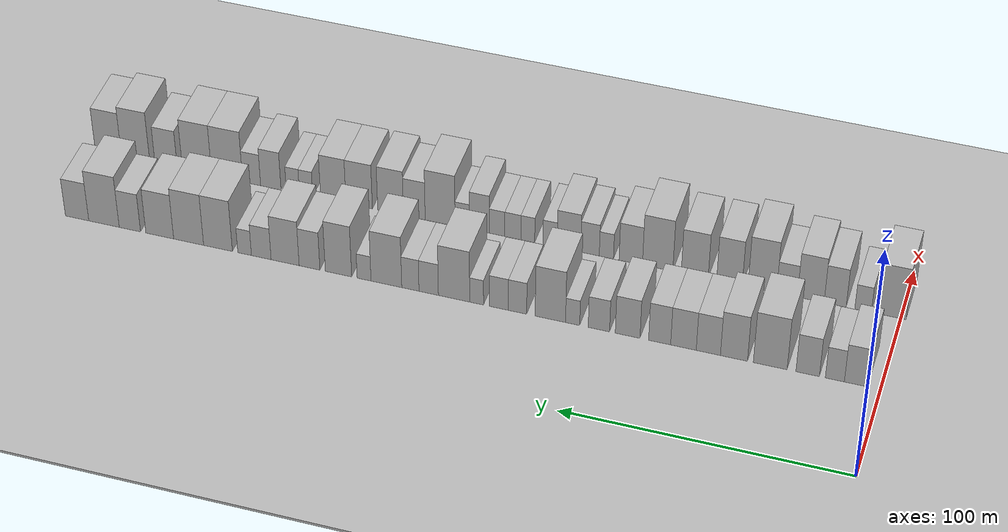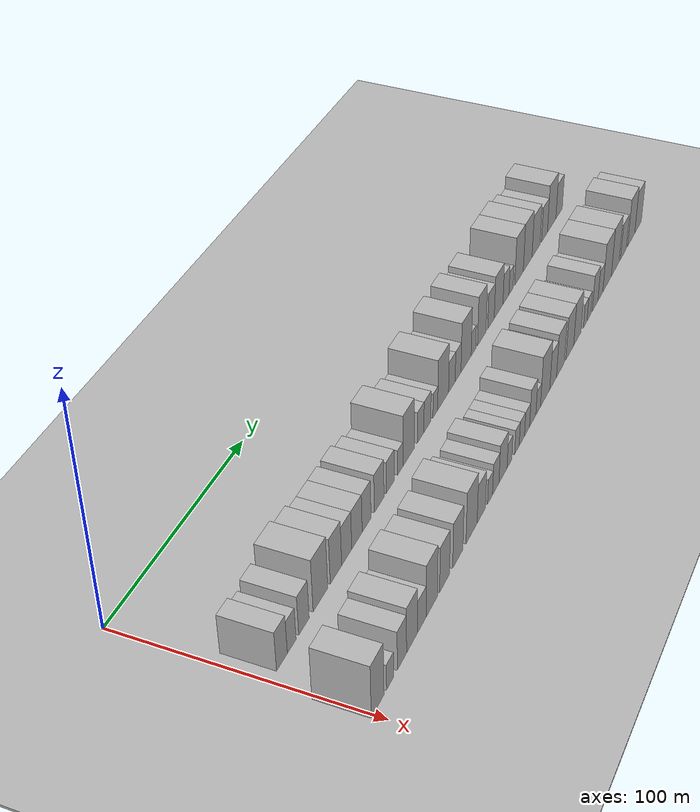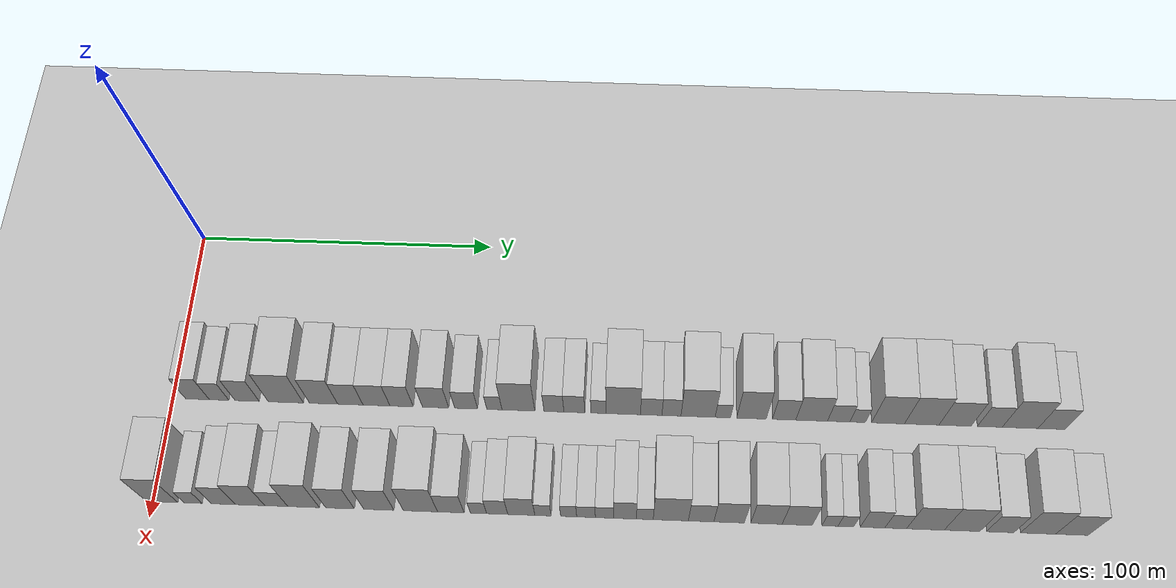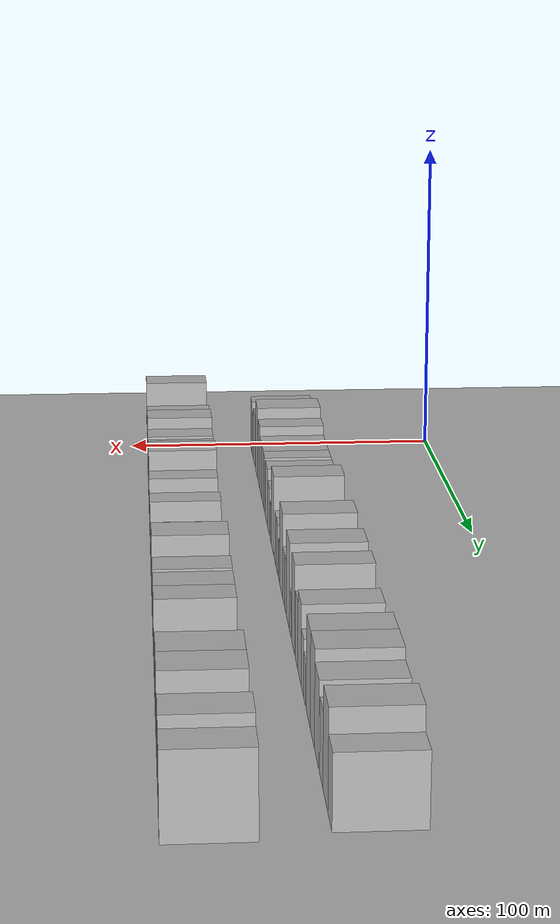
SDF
<sdf version="1.6">
 <world name="default">
  <include><name>ground_plane_1</name><uri>model://HANNAS_ground_plane</uri></include>
  <include>
   <name>ground_plane_2</name>
   <uri>model://HANNAS_ground_plane</uri>
   <pose>100 0 0  0 0 0</pose>
  </include>
  <model name="building_33">
   <static>1</static>
   <pose>50.0000 8.3077 0 0.000000 0.000000 0.000000</pose>
   <link name="link">
    <pose>0 0 9.00 0 0 0</pose>
    <collision name="collision"><geometry><box><size>20.0000 7.8744 18.0000</size></box></geometry></collision>
    <visual name="visual">
     <cast_shadows>0</cast_shadows>
     <geometry><box><size>20.0000 7.8744 18.0000</size></box></geometry>
     <material>
      <script>
       <uri>model://HANNAS_wall/materials/scripts</uri>
       <uri>model://HANNAS_wall/materials/textures</uri>
       <name>vrc/HANNAS_wall</name>
      </script>
     </material>
    </visual>
   </link>
  </model>
  <model name="building_34">
   <static>1</static>
   <pose>50.0000 15.4717 0 0.000000 0.000000 0.000000</pose>
   <link name="link">
    <pose>0 0 7.50 0 0 0</pose>
    <collision name="collision"><geometry><box><size>20.0000 6.4537 15.0000</size></box></geometry></collision>
    <visual name="visual">
     <cast_shadows>0</cast_shadows>
     <geometry><box><size>20.0000 6.4537 15.0000</size></box></geometry>
     <material>
      <script>
       <uri>model://HANNAS_wall/materials/scripts</uri>
       <uri>model://HANNAS_wall/materials/textures</uri>
       <name>vrc/HANNAS_wall</name>
      </script>
     </material>
    </visual>
   </link>
  </model>
  <model name="building_35">
   <static>1</static>
   <pose>50.0000 24.6957 0 0.000000 0.000000 0.000000</pose>
   <link name="link">
    <pose>0 0 9.00 0 0 0</pose>
    <collision name="collision"><geometry><box><size>20.0000 7.9942 18.0000</size></box></geometry></collision>
    <visual name="visual">
     <cast_shadows>0</cast_shadows>
     <geometry><box><size>20.0000 7.9942 18.0000</size></box></geometry>
     <material>
      <script>
       <uri>model://HANNAS_wall/materials/scripts</uri>
       <uri>model://HANNAS_wall/materials/textures</uri>
       <name>vrc/HANNAS_wall</name>
      </script>
     </material>
    </visual>
   </link>
  </model>
  <model name="building_36">
   <static>1</static>
   <pose>50.0000 37.4845 0 0.000000 0.000000 0.000000</pose>
   <link name="link">
    <pose>0 0 12.00 0 0 0</pose>
    <collision name="collision"><geometry><box><size>20.0000 11.5835 24.0000</size></box></geometry></collision>
    <visual name="visual">
     <cast_shadows>0</cast_shadows>
     <geometry><box><size>20.0000 11.5835 24.0000</size></box></geometry>
     <material>
      <script>
       <uri>model://HANNAS_wall/materials/scripts</uri>
       <uri>model://HANNAS_wall/materials/textures</uri>
       <name>vrc/HANNAS_wall</name>
      </script>
     </material>
    </visual>
   </link>
  </model>
  <model name="building_37">
   <static>1</static>
   <pose>50.0000 49.9310 0 0.000000 0.000000 0.000000</pose>
   <link name="link">
    <pose>0 0 10.50 0 0 0</pose>
    <collision name="collision"><geometry><box><size>20.0000 9.3095 21.0000</size></box></geometry></collision>
    <visual name="visual">
     <cast_shadows>0</cast_shadows>
     <geometry><box><size>20.0000 9.3095 21.0000</size></box></geometry>
     <material>
      <script>
       <uri>model://HANNAS_wall/materials/scripts</uri>
       <uri>model://HANNAS_wall/materials/textures</uri>
       <name>vrc/HANNAS_wall</name>
      </script>
     </material>
    </visual>
   </link>
  </model>
  <model name="building_38">
   <static>1</static>
   <pose>50.0000 58.7630 0 0.000000 0.000000 0.000000</pose>
   <link name="link">
    <pose>0 0 9.00 0 0 0</pose>
    <collision name="collision"><geometry><box><size>20.0000 8.3544 18.0000</size></box></geometry></collision>
    <visual name="visual">
     <cast_shadows>0</cast_shadows>
     <geometry><box><size>20.0000 8.3544 18.0000</size></box></geometry>
     <material>
      <script>
       <uri>model://HANNAS_wall/materials/scripts</uri>
       <uri>model://HANNAS_wall/materials/textures</uri>
       <name>vrc/HANNAS_wall</name>
      </script>
     </material>
    </visual>
   </link>
  </model>
  <model name="building_39">
   <static>1</static>
   <pose>50.0000 67.3760 0 0.000000 0.000000 0.000000</pose>
   <link name="link">
    <pose>0 0 9.00 0 0 0</pose>
    <collision name="collision"><geometry><box><size>20.0000 8.8717 18.0000</size></box></geometry></collision>
    <visual name="visual">
     <cast_shadows>0</cast_shadows>
     <geometry><box><size>20.0000 8.8717 18.0000</size></box></geometry>
     <material>
      <script>
       <uri>model://HANNAS_wall/materials/scripts</uri>
       <uri>model://HANNAS_wall/materials/textures</uri>
       <name>vrc/HANNAS_wall</name>
      </script>
     </material>
    </visual>
   </link>
  </model>
  <model name="building_40">
   <static>1</static>
   <pose>50.0000 75.6521 0 0.000000 0.000000 0.000000</pose>
   <link name="link">
    <pose>0 0 9.00 0 0 0</pose>
    <collision name="collision"><geometry><box><size>20.0000 7.6804 18.0000</size></box></geometry></collision>
    <visual name="visual">
     <cast_shadows>0</cast_shadows>
     <geometry><box><size>20.0000 7.6804 18.0000</size></box></geometry>
     <material>
      <script>
       <uri>model://HANNAS_wall/materials/scripts</uri>
       <uri>model://HANNAS_wall/materials/textures</uri>
       <name>vrc/HANNAS_wall</name>
      </script>
     </material>
    </visual>
   </link>
  </model>
  <model name="building_41">
   <static>1</static>
   <pose>50.0000 86.8144 0 0.000000 0.000000 0.000000</pose>
   <link name="link">
    <pose>0 0 9.00 0 0 0</pose>
    <collision name="collision"><geometry><box><size>20.0000 8.6443 18.0000</size></box></geometry></collision>
    <visual name="visual">
     <cast_shadows>0</cast_shadows>
     <geometry><box><size>20.0000 8.6443 18.0000</size></box></geometry>
     <material>
      <script>
       <uri>model://HANNAS_wall/materials/scripts</uri>
       <uri>model://HANNAS_wall/materials/textures</uri>
       <name>vrc/HANNAS_wall</name>
      </script>
     </material>
    </visual>
   </link>
  </model>
  <model name="building_42">
   <static>1</static>
   <pose>50.0000 96.8836 0 0.000000 0.000000 0.000000</pose>
   <link name="link">
    <pose>0 0 7.50 0 0 0</pose>
    <collision name="collision"><geometry><box><size>20.0000 7.4940 15.0000</size></box></geometry></collision>
    <visual name="visual">
     <cast_shadows>0</cast_shadows>
     <geometry><box><size>20.0000 7.4940 15.0000</size></box></geometry>
     <material>
      <script>
       <uri>model://HANNAS_wall/materials/scripts</uri>
       <uri>model://HANNAS_wall/materials/textures</uri>
       <name>vrc/HANNAS_wall</name>
      </script>
     </material>
    </visual>
   </link>
  </model>
  <model name="building_43">
   <static>1</static>
   <pose>50.0000 106.1288 0 0.000000 0.000000 0.000000</pose>
   <link name="link">
    <pose>0 0 6.00 0 0 0</pose>
    <collision name="collision"><geometry><box><size>20.0000 4.9965 12.0000</size></box></geometry></collision>
    <visual name="visual">
     <cast_shadows>0</cast_shadows>
     <geometry><box><size>20.0000 4.9965 12.0000</size></box></geometry>
     <material>
      <script>
       <uri>model://HANNAS_wall/materials/scripts</uri>
       <uri>model://HANNAS_wall/materials/textures</uri>
       <name>vrc/HANNAS_wall</name>
      </script>
     </material>
    </visual>
   </link>
  </model>
  <model name="building_44">
   <static>1</static>
   <pose>50.0000 114.0074 0 0.000000 0.000000 0.000000</pose>
   <link name="link">
    <pose>0 0 12.00 0 0 0</pose>
    <collision name="collision"><geometry><box><size>20.0000 10.7607 24.0000</size></box></geometry></collision>
    <visual name="visual">
     <cast_shadows>0</cast_shadows>
     <geometry><box><size>20.0000 10.7607 24.0000</size></box></geometry>
     <material>
      <script>
       <uri>model://HANNAS_wall/materials/scripts</uri>
       <uri>model://HANNAS_wall/materials/textures</uri>
       <name>vrc/HANNAS_wall</name>
      </script>
     </material>
    </visual>
   </link>
  </model>
  <model name="building_45">
   <static>1</static>
   <pose>50.0000 125.6424 0 0.000000 0.000000 0.000000</pose>
   <link name="link">
    <pose>0 0 7.50 0 0 0</pose>
    <collision name="collision"><geometry><box><size>20.0000 6.5093 15.0000</size></box></geometry></collision>
    <visual name="visual">
     <cast_shadows>0</cast_shadows>
     <geometry><box><size>20.0000 6.5093 15.0000</size></box></geometry>
     <material>
      <script>
       <uri>model://HANNAS_wall/materials/scripts</uri>
       <uri>model://HANNAS_wall/materials/textures</uri>
       <name>vrc/HANNAS_wall</name>
      </script>
     </material>
    </visual>
   </link>
  </model>
  <model name="building_46">
   <static>1</static>
   <pose>50.0000 132.3293 0 0.000000 0.000000 0.000000</pose>
   <link name="link">
    <pose>0 0 7.50 0 0 0</pose>
    <collision name="collision"><geometry><box><size>20.0000 6.8644 15.0000</size></box></geometry></collision>
    <visual name="visual">
     <cast_shadows>0</cast_shadows>
     <geometry><box><size>20.0000 6.8644 15.0000</size></box></geometry>
     <material>
      <script>
       <uri>model://HANNAS_wall/materials/scripts</uri>
       <uri>model://HANNAS_wall/materials/textures</uri>
       <name>vrc/HANNAS_wall</name>
      </script>
     </material>
    </visual>
   </link>
  </model>
  <model name="building_47">
   <static>1</static>
   <pose>50.0000 140.2455 0 0.000000 0.000000 0.000000</pose>
   <link name="link">
    <pose>0 0 6.00 0 0 0</pose>
    <collision name="collision"><geometry><box><size>20.0000 4.9681 12.0000</size></box></geometry></collision>
    <visual name="visual">
     <cast_shadows>0</cast_shadows>
     <geometry><box><size>20.0000 4.9681 12.0000</size></box></geometry>
     <material>
      <script>
       <uri>model://HANNAS_wall/materials/scripts</uri>
       <uri>model://HANNAS_wall/materials/textures</uri>
       <name>vrc/HANNAS_wall</name>
      </script>
     </material>
    </visual>
   </link>
  </model>
  <model name="building_48">
   <static>1</static>
   <pose>50.0000 148.3517 0 0.000000 0.000000 0.000000</pose>
   <link name="link">
    <pose>0 0 12.00 0 0 0</pose>
    <collision name="collision"><geometry><box><size>20.0000 11.2443 24.0000</size></box></geometry></collision>
    <visual name="visual">
     <cast_shadows>0</cast_shadows>
     <geometry><box><size>20.0000 11.2443 24.0000</size></box></geometry>
     <material>
      <script>
       <uri>model://HANNAS_wall/materials/scripts</uri>
       <uri>model://HANNAS_wall/materials/textures</uri>
       <name>vrc/HANNAS_wall</name>
      </script>
     </material>
    </visual>
   </link>
  </model>
  <model name="building_49">
   <static>1</static>
   <pose>50.0000 157.4741 0 0.000000 0.000000 0.000000</pose>
   <link name="link">
    <pose>0 0 7.50 0 0 0</pose>
    <collision name="collision"><geometry><box><size>20.0000 7.0004 15.0000</size></box></geometry></collision>
    <visual name="visual">
     <cast_shadows>0</cast_shadows>
     <geometry><box><size>20.0000 7.0004 15.0000</size></box></geometry>
     <material>
      <script>
       <uri>model://HANNAS_wall/materials/scripts</uri>
       <uri>model://HANNAS_wall/materials/textures</uri>
       <name>vrc/HANNAS_wall</name>
      </script>
     </material>
    </visual>
   </link>
  </model>
  <model name="building_50">
   <static>1</static>
   <pose>50.0000 164.0814 0 0.000000 0.000000 0.000000</pose>
   <link name="link">
    <pose>0 0 7.50 0 0 0</pose>
    <collision name="collision"><geometry><box><size>20.0000 6.2141 15.0000</size></box></geometry></collision>
    <visual name="visual">
     <cast_shadows>0</cast_shadows>
     <geometry><box><size>20.0000 6.2141 15.0000</size></box></geometry>
     <material>
      <script>
       <uri>model://HANNAS_wall/materials/scripts</uri>
       <uri>model://HANNAS_wall/materials/textures</uri>
       <name>vrc/HANNAS_wall</name>
      </script>
     </material>
    </visual>
   </link>
  </model>
  <model name="building_51">
   <static>1</static>
   <pose>50.0000 172.7719 0 0.000000 0.000000 0.000000</pose>
   <link name="link">
    <pose>0 0 12.00 0 0 0</pose>
    <collision name="collision"><geometry><box><size>20.0000 11.1669 24.0000</size></box></geometry></collision>
    <visual name="visual">
     <cast_shadows>0</cast_shadows>
     <geometry><box><size>20.0000 11.1669 24.0000</size></box></geometry>
     <material>
      <script>
       <uri>model://HANNAS_wall/materials/scripts</uri>
       <uri>model://HANNAS_wall/materials/textures</uri>
       <name>vrc/HANNAS_wall</name>
      </script>
     </material>
    </visual>
   </link>
  </model>
  <model name="building_52">
   <static>1</static>
   <pose>50.0000 180.8768 0 0.000000 0.000000 0.000000</pose>
   <link name="link">
    <pose>0 0 6.00 0 0 0</pose>
    <collision name="collision"><geometry><box><size>20.0000 5.0429 12.0000</size></box></geometry></collision>
    <visual name="visual">
     <cast_shadows>0</cast_shadows>
     <geometry><box><size>20.0000 5.0429 12.0000</size></box></geometry>
     <material>
      <script>
       <uri>model://HANNAS_wall/materials/scripts</uri>
       <uri>model://HANNAS_wall/materials/textures</uri>
       <name>vrc/HANNAS_wall</name>
      </script>
     </material>
    </visual>
   </link>
  </model>
  <model name="building_53">
   <static>1</static>
   <pose>50.0000 190.2088 0 0.000000 0.000000 0.000000</pose>
   <link name="link">
    <pose>0 0 12.00 0 0 0</pose>
    <collision name="collision"><geometry><box><size>20.0000 9.6211 24.0000</size></box></geometry></collision>
    <visual name="visual">
     <cast_shadows>0</cast_shadows>
     <geometry><box><size>20.0000 9.6211 24.0000</size></box></geometry>
     <material>
      <script>
       <uri>model://HANNAS_wall/materials/scripts</uri>
       <uri>model://HANNAS_wall/materials/textures</uri>
       <name>vrc/HANNAS_wall</name>
      </script>
     </material>
    </visual>
   </link>
  </model>
  <model name="building_54">
   <static>1</static>
   <pose>50.0000 200.8374 0 0.000000 0.000000 0.000000</pose>
   <link name="link">
    <pose>0 0 9.00 0 0 0</pose>
    <collision name="collision"><geometry><box><size>20.0000 7.6361 18.0000</size></box></geometry></collision>
    <visual name="visual">
     <cast_shadows>0</cast_shadows>
     <geometry><box><size>20.0000 7.6361 18.0000</size></box></geometry>
     <material>
      <script>
       <uri>model://HANNAS_wall/materials/scripts</uri>
       <uri>model://HANNAS_wall/materials/textures</uri>
       <name>vrc/HANNAS_wall</name>
      </script>
     </material>
    </visual>
   </link>
  </model>
  <model name="building_55">
   <static>1</static>
   <pose>50.0000 209.8259 0 0.000000 0.000000 0.000000</pose>
   <link name="link">
    <pose>0 0 10.50 0 0 0</pose>
    <collision name="collision"><geometry><box><size>20.0000 10.3408 21.0000</size></box></geometry></collision>
    <visual name="visual">
     <cast_shadows>0</cast_shadows>
     <geometry><box><size>20.0000 10.3408 21.0000</size></box></geometry>
     <material>
      <script>
       <uri>model://HANNAS_wall/materials/scripts</uri>
       <uri>model://HANNAS_wall/materials/textures</uri>
       <name>vrc/HANNAS_wall</name>
      </script>
     </material>
    </visual>
   </link>
  </model>
  <model name="building_56">
   <static>1</static>
   <pose>50.0000 218.6355 0 0.000000 0.000000 0.000000</pose>
   <link name="link">
    <pose>0 0 7.50 0 0 0</pose>
    <collision name="collision"><geometry><box><size>20.0000 7.2785 15.0000</size></box></geometry></collision>
    <visual name="visual">
     <cast_shadows>0</cast_shadows>
     <geometry><box><size>20.0000 7.2785 15.0000</size></box></geometry>
     <material>
      <script>
       <uri>model://HANNAS_wall/materials/scripts</uri>
       <uri>model://HANNAS_wall/materials/textures</uri>
       <name>vrc/HANNAS_wall</name>
      </script>
     </material>
    </visual>
   </link>
  </model>
  <model name="building_57">
   <static>1</static>
   <pose>50.0000 224.8063 0 0.000000 0.000000 0.000000</pose>
   <link name="link">
    <pose>0 0 6.00 0 0 0</pose>
    <collision name="collision"><geometry><box><size>20.0000 5.0629 12.0000</size></box></geometry></collision>
    <visual name="visual">
     <cast_shadows>0</cast_shadows>
     <geometry><box><size>20.0000 5.0629 12.0000</size></box></geometry>
     <material>
      <script>
       <uri>model://HANNAS_wall/materials/scripts</uri>
       <uri>model://HANNAS_wall/materials/textures</uri>
       <name>vrc/HANNAS_wall</name>
      </script>
     </material>
    </visual>
   </link>
  </model>
  <model name="building_58">
   <static>1</static>
   <pose>50.0000 234.7085 0 0.000000 0.000000 0.000000</pose>
   <link name="link">
    <pose>0 0 12.00 0 0 0</pose>
    <collision name="collision"><geometry><box><size>20.0000 10.7415 24.0000</size></box></geometry></collision>
    <visual name="visual">
     <cast_shadows>0</cast_shadows>
     <geometry><box><size>20.0000 10.7415 24.0000</size></box></geometry>
     <material>
      <script>
       <uri>model://HANNAS_wall/materials/scripts</uri>
       <uri>model://HANNAS_wall/materials/textures</uri>
       <name>vrc/HANNAS_wall</name>
      </script>
     </material>
    </visual>
   </link>
  </model>
  <model name="building_59">
   <static>1</static>
   <pose>50.0000 245.6896 0 0.000000 0.000000 0.000000</pose>
   <link name="link">
    <pose>0 0 12.00 0 0 0</pose>
    <collision name="collision"><geometry><box><size>20.0000 11.2207 24.0000</size></box></geometry></collision>
    <visual name="visual">
     <cast_shadows>0</cast_shadows>
     <geometry><box><size>20.0000 11.2207 24.0000</size></box></geometry>
     <material>
      <script>
       <uri>model://HANNAS_wall/materials/scripts</uri>
       <uri>model://HANNAS_wall/materials/textures</uri>
       <name>vrc/HANNAS_wall</name>
      </script>
     </material>
    </visual>
   </link>
  </model>
  <model name="building_60">
   <static>1</static>
   <pose>50.0000 256.5282 0 0.000000 0.000000 0.000000</pose>
   <link name="link">
    <pose>0 0 10.50 0 0 0</pose>
    <collision name="collision"><geometry><box><size>20.0000 10.4566 21.0000</size></box></geometry></collision>
    <visual name="visual">
     <cast_shadows>0</cast_shadows>
     <geometry><box><size>20.0000 10.4566 21.0000</size></box></geometry>
     <material>
      <script>
       <uri>model://HANNAS_wall/materials/scripts</uri>
       <uri>model://HANNAS_wall/materials/textures</uri>
       <name>vrc/HANNAS_wall</name>
      </script>
     </material>
    </visual>
   </link>
  </model>
  <model name="building_61">
   <static>1</static>
   <pose>50.0000 267.7824 0 0.000000 0.000000 0.000000</pose>
   <link name="link">
    <pose>0 0 9.00 0 0 0</pose>
    <collision name="collision"><geometry><box><size>20.0000 8.0516 18.0000</size></box></geometry></collision>
    <visual name="visual">
     <cast_shadows>0</cast_shadows>
     <geometry><box><size>20.0000 8.0516 18.0000</size></box></geometry>
     <material>
      <script>
       <uri>model://HANNAS_wall/materials/scripts</uri>
       <uri>model://HANNAS_wall/materials/textures</uri>
       <name>vrc/HANNAS_wall</name>
      </script>
     </material>
    </visual>
   </link>
  </model>
  <model name="building_62">
   <static>1</static>
   <pose>50.0000 277.5913 0 0.000000 0.000000 0.000000</pose>
   <link name="link">
    <pose>0 0 12.00 0 0 0</pose>
    <collision name="collision"><geometry><box><size>20.0000 11.5663 24.0000</size></box></geometry></collision>
    <visual name="visual">
     <cast_shadows>0</cast_shadows>
     <geometry><box><size>20.0000 11.5663 24.0000</size></box></geometry>
     <material>
      <script>
       <uri>model://HANNAS_wall/materials/scripts</uri>
       <uri>model://HANNAS_wall/materials/textures</uri>
       <name>vrc/HANNAS_wall</name>
      </script>
     </material>
    </visual>
   </link>
  </model>
  <model name="building_63">
   <static>1</static>
   <pose>50.0000 287.8205 0 0.000000 0.000000 0.000000</pose>
   <link name="link">
    <pose>0 0 9.00 0 0 0</pose>
    <collision name="collision"><geometry><box><size>20.0000 8.8919 18.0000</size></box></geometry></collision>
    <visual name="visual">
     <cast_shadows>0</cast_shadows>
     <geometry><box><size>20.0000 8.8919 18.0000</size></box></geometry>
     <material>
      <script>
       <uri>model://HANNAS_wall/materials/scripts</uri>
       <uri>model://HANNAS_wall/materials/textures</uri>
       <name>vrc/HANNAS_wall</name>
      </script>
     </material>
    </visual>
   </link>
  </model>
  <model name="building_97">
   <static>1</static>
   <pose>85.0000 3.2136 0 0.000000 0.000000 0.000000</pose>
   <link name="link">
    <pose>0 0 12.00 0 0 0</pose>
    <collision name="collision"><geometry><box><size>20.0000 9.9870 24.0000</size></box></geometry></collision>
    <visual name="visual">
     <cast_shadows>0</cast_shadows>
     <geometry><box><size>20.0000 9.9870 24.0000</size></box></geometry>
     <material>
      <script>
       <uri>model://HANNAS_wall/materials/scripts</uri>
       <uri>model://HANNAS_wall/materials/textures</uri>
       <name>vrc/HANNAS_wall</name>
      </script>
     </material>
    </visual>
   </link>
  </model>
  <model name="building_98">
   <static>1</static>
   <pose>85.0000 13.0778 0 0.000000 0.000000 0.000000</pose>
   <link name="link">
    <pose>0 0 6.00 0 0 0</pose>
    <collision name="collision"><geometry><box><size>20.0000 5.7414 12.0000</size></box></geometry></collision>
    <visual name="visual">
     <cast_shadows>0</cast_shadows>
     <geometry><box><size>20.0000 5.7414 12.0000</size></box></geometry>
     <material>
      <script>
       <uri>model://HANNAS_wall/materials/scripts</uri>
       <uri>model://HANNAS_wall/materials/textures</uri>
       <name>vrc/HANNAS_wall</name>
      </script>
     </material>
    </visual>
   </link>
  </model>
  <model name="building_99">
   <static>1</static>
   <pose>85.0000 22.7902 0 0.000000 0.000000 0.000000</pose>
   <link name="link">
    <pose>0 0 9.00 0 0 0</pose>
    <collision name="collision"><geometry><box><size>20.0000 7.6833 18.0000</size></box></geometry></collision>
    <visual name="visual">
     <cast_shadows>0</cast_shadows>
     <geometry><box><size>20.0000 7.6833 18.0000</size></box></geometry>
     <material>
      <script>
       <uri>model://HANNAS_wall/materials/scripts</uri>
       <uri>model://HANNAS_wall/materials/textures</uri>
       <name>vrc/HANNAS_wall</name>
      </script>
     </material>
    </visual>
   </link>
  </model>
  <model name="building_100">
   <static>1</static>
   <pose>85.0000 31.2977 0 0.000000 0.000000 0.000000</pose>
   <link name="link">
    <pose>0 0 10.50 0 0 0</pose>
    <collision name="collision"><geometry><box><size>20.0000 9.3317 21.0000</size></box></geometry></collision>
    <visual name="visual">
     <cast_shadows>0</cast_shadows>
     <geometry><box><size>20.0000 9.3317 21.0000</size></box></geometry>
     <material>
      <script>
       <uri>model://HANNAS_wall/materials/scripts</uri>
       <uri>model://HANNAS_wall/materials/textures</uri>
       <name>vrc/HANNAS_wall</name>
      </script>
     </material>
    </visual>
   </link>
  </model>
  <model name="building_101">
   <static>1</static>
   <pose>85.0000 39.6190 0 0.000000 0.000000 0.000000</pose>
   <link name="link">
    <pose>0 0 7.50 0 0 0</pose>
    <collision name="collision"><geometry><box><size>20.0000 7.3111 15.0000</size></box></geometry></collision>
    <visual name="visual">
     <cast_shadows>0</cast_shadows>
     <geometry><box><size>20.0000 7.3111 15.0000</size></box></geometry>
     <material>
      <script>
       <uri>model://HANNAS_wall/materials/scripts</uri>
       <uri>model://HANNAS_wall/materials/textures</uri>
       <name>vrc/HANNAS_wall</name>
      </script>
     </material>
    </visual>
   </link>
  </model>
  <model name="building_102">
   <static>1</static>
   <pose>85.0000 48.3078 0 0.000000 0.000000 0.000000</pose>
   <link name="link">
    <pose>0 0 12.00 0 0 0</pose>
    <collision name="collision"><geometry><box><size>20.0000 10.0664 24.0000</size></box></geometry></collision>
    <visual name="visual">
     <cast_shadows>0</cast_shadows>
     <geometry><box><size>20.0000 10.0664 24.0000</size></box></geometry>
     <material>
      <script>
       <uri>model://HANNAS_wall/materials/scripts</uri>
       <uri>model://HANNAS_wall/materials/textures</uri>
       <name>vrc/HANNAS_wall</name>
      </script>
     </material>
    </visual>
   </link>
  </model>
  <model name="building_103">
   <static>1</static>
   <pose>85.0000 59.8753 0 0.000000 0.000000 0.000000</pose>
   <link name="link">
    <pose>0 0 10.50 0 0 0</pose>
    <collision name="collision"><geometry><box><size>20.0000 9.0687 21.0000</size></box></geometry></collision>
    <visual name="visual">
     <cast_shadows>0</cast_shadows>
     <geometry><box><size>20.0000 9.0687 21.0000</size></box></geometry>
     <material>
      <script>
       <uri>model://HANNAS_wall/materials/scripts</uri>
       <uri>model://HANNAS_wall/materials/textures</uri>
       <name>vrc/HANNAS_wall</name>
      </script>
     </material>
    </visual>
   </link>
  </model>
  <model name="building_104">
   <static>1</static>
   <pose>85.0000 72.1993 0 0.000000 0.000000 0.000000</pose>
   <link name="link">
    <pose>0 0 10.50 0 0 0</pose>
    <collision name="collision"><geometry><box><size>20.0000 9.5793 21.0000</size></box></geometry></collision>
    <visual name="visual">
     <cast_shadows>0</cast_shadows>
     <geometry><box><size>20.0000 9.5793 21.0000</size></box></geometry>
     <material>
      <script>
       <uri>model://HANNAS_wall/materials/scripts</uri>
       <uri>model://HANNAS_wall/materials/textures</uri>
       <name>vrc/HANNAS_wall</name>
      </script>
     </material>
    </visual>
   </link>
  </model>
  <model name="building_105">
   <static>1</static>
   <pose>85.0000 85.4205 0 0.000000 0.000000 0.000000</pose>
   <link name="link">
    <pose>0 0 12.00 0 0 0</pose>
    <collision name="collision"><geometry><box><size>20.0000 10.8630 24.0000</size></box></geometry></collision>
    <visual name="visual">
     <cast_shadows>0</cast_shadows>
     <geometry><box><size>20.0000 10.8630 24.0000</size></box></geometry>
     <material>
      <script>
       <uri>model://HANNAS_wall/materials/scripts</uri>
       <uri>model://HANNAS_wall/materials/textures</uri>
       <name>vrc/HANNAS_wall</name>
      </script>
     </material>
    </visual>
   </link>
  </model>
  <model name="building_106">
   <static>1</static>
   <pose>85.0000 95.0516 0 0.000000 0.000000 0.000000</pose>
   <link name="link">
    <pose>0 0 9.00 0 0 0</pose>
    <collision name="collision"><geometry><box><size>20.0000 8.3993 18.0000</size></box></geometry></collision>
    <visual name="visual">
     <cast_shadows>0</cast_shadows>
     <geometry><box><size>20.0000 8.3993 18.0000</size></box></geometry>
     <material>
      <script>
       <uri>model://HANNAS_wall/materials/scripts</uri>
       <uri>model://HANNAS_wall/materials/textures</uri>
       <name>vrc/HANNAS_wall</name>
      </script>
     </material>
    </visual>
   </link>
  </model>
  <model name="building_107">
   <static>1</static>
   <pose>85.0000 103.8183 0 0.000000 0.000000 0.000000</pose>
   <link name="link">
    <pose>0 0 6.00 0 0 0</pose>
    <collision name="collision"><geometry><box><size>20.0000 5.1341 12.0000</size></box></geometry></collision>
    <visual name="visual">
     <cast_shadows>0</cast_shadows>
     <geometry><box><size>20.0000 5.1341 12.0000</size></box></geometry>
     <material>
      <script>
       <uri>model://HANNAS_wall/materials/scripts</uri>
       <uri>model://HANNAS_wall/materials/textures</uri>
       <name>vrc/HANNAS_wall</name>
      </script>
     </material>
    </visual>
   </link>
  </model>
  <model name="building_108">
   <static>1</static>
   <pose>85.0000 109.7317 0 0.000000 0.000000 0.000000</pose>
   <link name="link">
    <pose>0 0 7.50 0 0 0</pose>
    <collision name="collision"><geometry><box><size>20.0000 6.6927 15.0000</size></box></geometry></collision>
    <visual name="visual">
     <cast_shadows>0</cast_shadows>
     <geometry><box><size>20.0000 6.6927 15.0000</size></box></geometry>
     <material>
      <script>
       <uri>model://HANNAS_wall/materials/scripts</uri>
       <uri>model://HANNAS_wall/materials/textures</uri>
       <name>vrc/HANNAS_wall</name>
      </script>
     </material>
    </visual>
   </link>
  </model>
  <model name="building_109">
   <static>1</static>
   <pose>85.0000 117.3625 0 0.000000 0.000000 0.000000</pose>
   <link name="link">
    <pose>0 0 9.00 0 0 0</pose>
    <collision name="collision"><geometry><box><size>20.0000 8.5689 18.0000</size></box></geometry></collision>
    <visual name="visual">
     <cast_shadows>0</cast_shadows>
     <geometry><box><size>20.0000 8.5689 18.0000</size></box></geometry>
     <material>
      <script>
       <uri>model://HANNAS_wall/materials/scripts</uri>
       <uri>model://HANNAS_wall/materials/textures</uri>
       <name>vrc/HANNAS_wall</name>
      </script>
     </material>
    </visual>
   </link>
  </model>
  <model name="building_110">
   <static>1</static>
   <pose>85.0000 124.2242 0 0.000000 0.000000 0.000000</pose>
   <link name="link">
    <pose>0 0 6.00 0 0 0</pose>
    <collision name="collision"><geometry><box><size>20.0000 5.1545 12.0000</size></box></geometry></collision>
    <visual name="visual">
     <cast_shadows>0</cast_shadows>
     <geometry><box><size>20.0000 5.1545 12.0000</size></box></geometry>
     <material>
      <script>
       <uri>model://HANNAS_wall/materials/scripts</uri>
       <uri>model://HANNAS_wall/materials/textures</uri>
       <name>vrc/HANNAS_wall</name>
      </script>
     </material>
    </visual>
   </link>
  </model>
  <model name="building_111">
   <static>1</static>
   <pose>85.0000 132.3261 0 0.000000 0.000000 0.000000</pose>
   <link name="link">
    <pose>0 0 6.00 0 0 0</pose>
    <collision name="collision"><geometry><box><size>20.0000 5.0495 12.0000</size></box></geometry></collision>
    <visual name="visual">
     <cast_shadows>0</cast_shadows>
     <geometry><box><size>20.0000 5.0495 12.0000</size></box></geometry>
     <material>
      <script>
       <uri>model://HANNAS_wall/materials/scripts</uri>
       <uri>model://HANNAS_wall/materials/textures</uri>
       <name>vrc/HANNAS_wall</name>
      </script>
     </material>
    </visual>
   </link>
  </model>
  <model name="building_112">
   <static>1</static>
   <pose>85.0000 137.7935 0 0.000000 0.000000 0.000000</pose>
   <link name="link">
    <pose>0 0 6.00 0 0 0</pose>
    <collision name="collision"><geometry><box><size>20.0000 5.8854 12.0000</size></box></geometry></collision>
    <visual name="visual">
     <cast_shadows>0</cast_shadows>
     <geometry><box><size>20.0000 5.8854 12.0000</size></box></geometry>
     <material>
      <script>
       <uri>model://HANNAS_wall/materials/scripts</uri>
       <uri>model://HANNAS_wall/materials/textures</uri>
       <name>vrc/HANNAS_wall</name>
      </script>
     </material>
    </visual>
   </link>
  </model>
  <model name="building_113">
   <static>1</static>
   <pose>85.0000 143.5969 0 0.000000 0.000000 0.000000</pose>
   <link name="link">
    <pose>0 0 6.00 0 0 0</pose>
    <collision name="collision"><geometry><box><size>20.0000 5.7214 12.0000</size></box></geometry></collision>
    <visual name="visual">
     <cast_shadows>0</cast_shadows>
     <geometry><box><size>20.0000 5.7214 12.0000</size></box></geometry>
     <material>
      <script>
       <uri>model://HANNAS_wall/materials/scripts</uri>
       <uri>model://HANNAS_wall/materials/textures</uri>
       <name>vrc/HANNAS_wall</name>
      </script>
     </material>
    </visual>
   </link>
  </model>
  <model name="building_114">
   <static>1</static>
   <pose>85.0000 150.0671 0 0.000000 0.000000 0.000000</pose>
   <link name="link">
    <pose>0 0 9.00 0 0 0</pose>
    <collision name="collision"><geometry><box><size>20.0000 7.2189 18.0000</size></box></geometry></collision>
    <visual name="visual">
     <cast_shadows>0</cast_shadows>
     <geometry><box><size>20.0000 7.2189 18.0000</size></box></geometry>
     <material>
      <script>
       <uri>model://HANNAS_wall/materials/scripts</uri>
       <uri>model://HANNAS_wall/materials/textures</uri>
       <name>vrc/HANNAS_wall</name>
      </script>
     </material>
    </visual>
   </link>
  </model>
  <model name="building_115">
   <static>1</static>
   <pose>85.0000 156.3297 0 0.000000 0.000000 0.000000</pose>
   <link name="link">
    <pose>0 0 6.00 0 0 0</pose>
    <collision name="collision"><geometry><box><size>20.0000 5.3063 12.0000</size></box></geometry></collision>
    <visual name="visual">
     <cast_shadows>0</cast_shadows>
     <geometry><box><size>20.0000 5.3063 12.0000</size></box></geometry>
     <material>
      <script>
       <uri>model://HANNAS_wall/materials/scripts</uri>
       <uri>model://HANNAS_wall/materials/textures</uri>
       <name>vrc/HANNAS_wall</name>
      </script>
     </material>
    </visual>
   </link>
  </model>
  <model name="building_116">
   <static>1</static>
   <pose>85.0000 164.5100 0 0.000000 0.000000 0.000000</pose>
   <link name="link">
    <pose>0 0 12.00 0 0 0</pose>
    <collision name="collision"><geometry><box><size>20.0000 11.0542 24.0000</size></box></geometry></collision>
    <visual name="visual">
     <cast_shadows>0</cast_shadows>
     <geometry><box><size>20.0000 11.0542 24.0000</size></box></geometry>
     <material>
      <script>
       <uri>model://HANNAS_wall/materials/scripts</uri>
       <uri>model://HANNAS_wall/materials/textures</uri>
       <name>vrc/HANNAS_wall</name>
      </script>
     </material>
    </visual>
   </link>
  </model>
  <model name="building_117">
   <static>1</static>
   <pose>85.0000 174.0666 0 0.000000 0.000000 0.000000</pose>
   <link name="link">
    <pose>0 0 9.00 0 0 0</pose>
    <collision name="collision"><geometry><box><size>20.0000 8.0591 18.0000</size></box></geometry></collision>
    <visual name="visual">
     <cast_shadows>0</cast_shadows>
     <geometry><box><size>20.0000 8.0591 18.0000</size></box></geometry>
     <material>
      <script>
       <uri>model://HANNAS_wall/materials/scripts</uri>
       <uri>model://HANNAS_wall/materials/textures</uri>
       <name>vrc/HANNAS_wall</name>
      </script>
     </material>
    </visual>
   </link>
  </model>
  <model name="building_118">
   <static>1</static>
   <pose>85.0000 182.8969 0 0.000000 0.000000 0.000000</pose>
   <link name="link">
    <pose>0 0 10.50 0 0 0</pose>
    <collision name="collision"><geometry><box><size>20.0000 9.6016 21.0000</size></box></geometry></collision>
    <visual name="visual">
     <cast_shadows>0</cast_shadows>
     <geometry><box><size>20.0000 9.6016 21.0000</size></box></geometry>
     <material>
      <script>
       <uri>model://HANNAS_wall/materials/scripts</uri>
       <uri>model://HANNAS_wall/materials/textures</uri>
       <name>vrc/HANNAS_wall</name>
      </script>
     </material>
    </visual>
   </link>
  </model>
  <model name="building_119">
   <static>1</static>
   <pose>85.0000 194.6389 0 0.000000 0.000000 0.000000</pose>
   <link name="link">
    <pose>0 0 10.50 0 0 0</pose>
    <collision name="collision"><geometry><box><size>20.0000 9.8824 21.0000</size></box></geometry></collision>
    <visual name="visual">
     <cast_shadows>0</cast_shadows>
     <geometry><box><size>20.0000 9.8824 21.0000</size></box></geometry>
     <material>
      <script>
       <uri>model://HANNAS_wall/materials/scripts</uri>
       <uri>model://HANNAS_wall/materials/textures</uri>
       <name>vrc/HANNAS_wall</name>
      </script>
     </material>
    </visual>
   </link>
  </model>
  <model name="building_120">
   <static>1</static>
   <pose>85.0000 204.3396 0 0.000000 0.000000 0.000000</pose>
   <link name="link">
    <pose>0 0 10.50 0 0 0</pose>
    <collision name="collision"><geometry><box><size>20.0000 9.5189 21.0000</size></box></geometry></collision>
    <visual name="visual">
     <cast_shadows>0</cast_shadows>
     <geometry><box><size>20.0000 9.5189 21.0000</size></box></geometry>
     <material>
      <script>
       <uri>model://HANNAS_wall/materials/scripts</uri>
       <uri>model://HANNAS_wall/materials/textures</uri>
       <name>vrc/HANNAS_wall</name>
      </script>
     </material>
    </visual>
   </link>
  </model>
  <model name="building_121">
   <static>1</static>
   <pose>85.0000 214.6201 0 0.000000 0.000000 0.000000</pose>
   <link name="link">
    <pose>0 0 6.00 0 0 0</pose>
    <collision name="collision"><geometry><box><size>20.0000 5.0421 12.0000</size></box></geometry></collision>
    <visual name="visual">
     <cast_shadows>0</cast_shadows>
     <geometry><box><size>20.0000 5.0421 12.0000</size></box></geometry>
     <material>
      <script>
       <uri>model://HANNAS_wall/materials/scripts</uri>
       <uri>model://HANNAS_wall/materials/textures</uri>
       <name>vrc/HANNAS_wall</name>
      </script>
     </material>
    </visual>
   </link>
  </model>
  <model name="building_122">
   <static>1</static>
   <pose>85.0000 219.6144 0 0.000000 0.000000 0.000000</pose>
   <link name="link">
    <pose>0 0 6.00 0 0 0</pose>
    <collision name="collision"><geometry><box><size>20.0000 4.9465 12.0000</size></box></geometry></collision>
    <visual name="visual">
     <cast_shadows>0</cast_shadows>
     <geometry><box><size>20.0000 4.9465 12.0000</size></box></geometry>
     <material>
      <script>
       <uri>model://HANNAS_wall/materials/scripts</uri>
       <uri>model://HANNAS_wall/materials/textures</uri>
       <name>vrc/HANNAS_wall</name>
      </script>
     </material>
    </visual>
   </link>
  </model>
  <model name="building_123">
   <static>1</static>
   <pose>85.0000 227.9524 0 0.000000 0.000000 0.000000</pose>
   <link name="link">
    <pose>0 0 9.00 0 0 0</pose>
    <collision name="collision"><geometry><box><size>20.0000 7.7295 18.0000</size></box></geometry></collision>
    <visual name="visual">
     <cast_shadows>0</cast_shadows>
     <geometry><box><size>20.0000 7.7295 18.0000</size></box></geometry>
     <material>
      <script>
       <uri>model://HANNAS_wall/materials/scripts</uri>
       <uri>model://HANNAS_wall/materials/textures</uri>
       <name>vrc/HANNAS_wall</name>
      </script>
     </material>
    </visual>
   </link>
  </model>
  <model name="building_124">
   <static>1</static>
   <pose>85.0000 235.2261 0 0.000000 0.000000 0.000000</pose>
   <link name="link">
    <pose>0 0 7.50 0 0 0</pose>
    <collision name="collision"><geometry><box><size>20.0000 6.8179 15.0000</size></box></geometry></collision>
    <visual name="visual">
     <cast_shadows>0</cast_shadows>
     <geometry><box><size>20.0000 6.8179 15.0000</size></box></geometry>
     <material>
      <script>
       <uri>model://HANNAS_wall/materials/scripts</uri>
       <uri>model://HANNAS_wall/materials/textures</uri>
       <name>vrc/HANNAS_wall</name>
      </script>
     </material>
    </visual>
   </link>
  </model>
  <model name="building_125">
   <static>1</static>
   <pose>85.0000 244.5659 0 0.000000 0.000000 0.000000</pose>
   <link name="link">
    <pose>0 0 12.00 0 0 0</pose>
    <collision name="collision"><geometry><box><size>20.0000 11.8618 24.0000</size></box></geometry></collision>
    <visual name="visual">
     <cast_shadows>0</cast_shadows>
     <geometry><box><size>20.0000 11.8618 24.0000</size></box></geometry>
     <material>
      <script>
       <uri>model://HANNAS_wall/materials/scripts</uri>
       <uri>model://HANNAS_wall/materials/textures</uri>
       <name>vrc/HANNAS_wall</name>
      </script>
     </material>
    </visual>
   </link>
  </model>
  <model name="building_126">
   <static>1</static>
   <pose>85.0000 256.1086 0 0.000000 0.000000 0.000000</pose>
   <link name="link">
    <pose>0 0 12.00 0 0 0</pose>
    <collision name="collision"><geometry><box><size>20.0000 11.2236 24.0000</size></box></geometry></collision>
    <visual name="visual">
     <cast_shadows>0</cast_shadows>
     <geometry><box><size>20.0000 11.2236 24.0000</size></box></geometry>
     <material>
      <script>
       <uri>model://HANNAS_wall/materials/scripts</uri>
       <uri>model://HANNAS_wall/materials/textures</uri>
       <name>vrc/HANNAS_wall</name>
      </script>
     </material>
    </visual>
   </link>
  </model>
  <model name="building_127">
   <static>1</static>
   <pose>85.0000 268.0243 0 0.000000 0.000000 0.000000</pose>
   <link name="link">
    <pose>0 0 9.00 0 0 0</pose>
    <collision name="collision"><geometry><box><size>20.0000 8.6079 18.0000</size></box></geometry></collision>
    <visual name="visual">
     <cast_shadows>0</cast_shadows>
     <geometry><box><size>20.0000 8.6079 18.0000</size></box></geometry>
     <material>
      <script>
       <uri>model://HANNAS_wall/materials/scripts</uri>
       <uri>model://HANNAS_wall/materials/textures</uri>
       <name>vrc/HANNAS_wall</name>
      </script>
     </material>
    </visual>
   </link>
  </model>
  <model name="building_128">
   <static>1</static>
   <pose>85.0000 279.8173 0 0.000000 0.000000 0.000000</pose>
   <link name="link">
    <pose>0 0 12.00 0 0 0</pose>
    <collision name="collision"><geometry><box><size>20.0000 10.9780 24.0000</size></box></geometry></collision>
    <visual name="visual">
     <cast_shadows>0</cast_shadows>
     <geometry><box><size>20.0000 10.9780 24.0000</size></box></geometry>
     <material>
      <script>
       <uri>model://HANNAS_wall/materials/scripts</uri>
       <uri>model://HANNAS_wall/materials/textures</uri>
       <name>vrc/HANNAS_wall</name>
      </script>
     </material>
    </visual>
   </link>
  </model>
  <model name="building_129">
   <static>1</static>
   <pose>85.0000 290.3953 0 0.000000 0.000000 0.000000</pose>
   <link name="link">
    <pose>0 0 10.50 0 0 0</pose>
    <collision name="collision"><geometry><box><size>20.0000 10.1778 21.0000</size></box></geometry></collision>
    <visual name="visual">
     <cast_shadows>0</cast_shadows>
     <geometry><box><size>20.0000 10.1778 21.0000</size></box></geometry>
     <material>
      <script>
       <uri>model://HANNAS_wall/materials/scripts</uri>
       <uri>model://HANNAS_wall/materials/textures</uri>
       <name>vrc/HANNAS_wall</name>
      </script>
     </material>
    </visual>
   </link>
  </model>
 </world>
</sdf>
